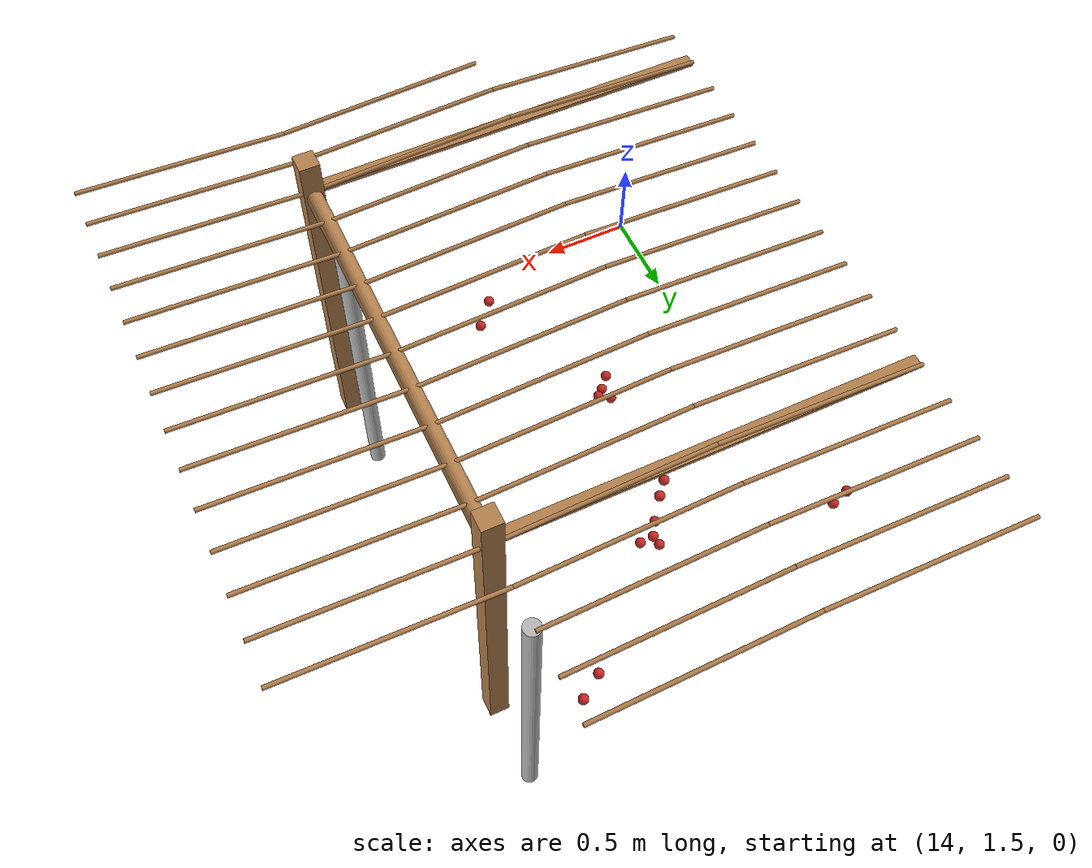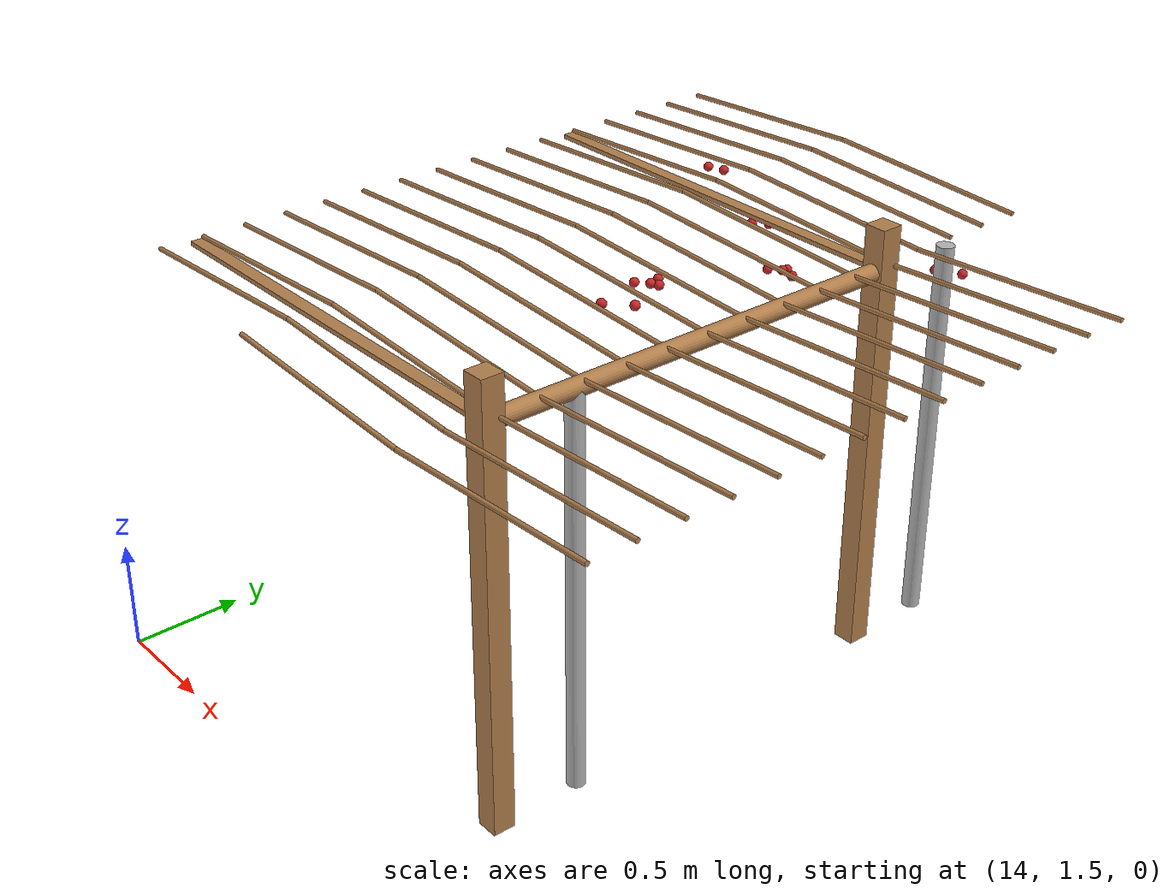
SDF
<sdf version="1.4">
 <model name="pergola">
  <include><name>post_89</name><pose>16.0 2.0 0 0 0 0</pose><uri>model://post</uri></include>
  <include><name>post_90</name><pose>16.0 4.0 0 0 0 0</pose><uri>model://post</uri></include>
  <link name="beam_78">
   <pose>15.0 2.0 1.81 0 0 0</pose>
   <collision name="collision"><geometry><box><size>2.0 0.06 0.02</size></box></geometry></collision>
   <visual name="visual">
    <geometry><box><size>2.0 0.06 0.02</size></box></geometry>
    <material><script><name>Gazebo/Wood</name></script></material>
   </visual>
   <inertial>
    <mass>5</mass>
    <inertia>
     <ixx>0.0016666666666666668</ixx>
     <ixy>0.0</ixy>
     <ixz>0.0</ixz>
     <iyy>1.6681666666666664</iyy>
     <iyz>0.0</iyz>
     <izz>1.6668333333333332</izz>
    </inertia>
   </inertial>
  </link>
  <link name="beam_79">
   <pose>15.0 4.0 1.81 0 0 0</pose>
   <collision name="collision"><geometry><box><size>2.0 0.06 0.02</size></box></geometry></collision>
   <visual name="visual">
    <geometry><box><size>2.0 0.06 0.02</size></box></geometry>
    <material><script><name>Gazebo/Wood</name></script></material>
   </visual>
   <inertial>
    <mass>5</mass>
    <inertia>
     <ixx>0.0016666666666666668</ixx>
     <ixy>0.0</ixy>
     <ixz>0.0</ixz>
     <iyy>1.6681666666666664</iyy>
     <iyz>0.0</iyz>
     <izz>1.6668333333333332</izz>
    </inertia>
   </inertial>
  </link>
  <include><name>tree_81</name><pose>16.0 2.4 0 0 0 0</pose><uri>model://tree_trunk</uri></include>
  <include><name>tree_82</name><pose>16.0 4.4 0 0 0 0</pose><uri>model://tree_trunk</uri></include>
  <link name="baseBranch_81">
   <pose>16.0 3.0 1.8 1.5707963267948966 0 0</pose>
   <collision name="collision">
    <geometry><cylinder><radius>0.04</radius><length>1.94</length></cylinder></geometry>
   </collision>
   <visual name="visual">
    <geometry><cylinder><radius>0.04</radius><length>1.94</length></cylinder></geometry>
    <material><script><name>Gazebo/WoodFloor</name></script></material>
   </visual>
   <inertial>
    <mass>10</mass>
    <inertia>
     <ixx>3.140333333333333</ixx>
     <ixy>0.0</ixy>
     <ixz>0.0</ixz>
     <iyy>3.140333333333333</iyy>
     <iyz>0.0</iyz>
     <izz>0.008</izz>
    </inertia>
   </inertial>
  </link>
  <link name="vine_1417">
   <pose>15.5 1.6300000000000001 1.85 0 -1.5208379310729538 0</pose>
   <collision name="collision">
    <geometry><cylinder><radius>0.01</radius><length>1.0012492197250393</length></cylinder></geometry>
   </collision>
   <visual name="visual">
    <geometry><cylinder><radius>0.01</radius><length>1.0012492197250393</length></cylinder></geometry>
    <material><script><name>Gazebo/WoodFloor</name></script></material>
   </visual>
   <inertial>
    <mass>5</mass>
    <inertia>
     <ixx>0.41783333333333345</ixx>
     <ixy>0.0</ixy>
     <ixz>0.0</ixz>
     <iyy>0.41783333333333345</iyy>
     <iyz>0.0</iyz>
     <izz>0.00025</izz>
    </inertia>
   </inertial>
  </link>
  <link name="vine_1418">
   <pose>14.5 1.83 1.85 0 1.5208379310729538 0</pose>
   <collision name="collision">
    <geometry><cylinder><radius>0.01</radius><length>1.0012492197250393</length></cylinder></geometry>
   </collision>
   <visual name="visual">
    <geometry><cylinder><radius>0.01</radius><length>1.0012492197250393</length></cylinder></geometry>
    <material><script><name>Gazebo/WoodFloor</name></script></material>
   </visual>
   <inertial>
    <mass>5</mass>
    <inertia>
     <ixx>0.41783333333333345</ixx>
     <ixy>0.0</ixy>
     <ixz>0.0</ixz>
     <iyy>0.41783333333333345</iyy>
     <iyz>0.0</iyz>
     <izz>0.00025</izz>
    </inertia>
   </inertial>
  </link>
  <link name="vine_1419">
   <pose>15.5 1.83 1.85 0 -1.5208379310729538 0</pose>
   <collision name="collision">
    <geometry><cylinder><radius>0.01</radius><length>1.0012492197250393</length></cylinder></geometry>
   </collision>
   <visual name="visual">
    <geometry><cylinder><radius>0.01</radius><length>1.0012492197250393</length></cylinder></geometry>
    <material><script><name>Gazebo/WoodFloor</name></script></material>
   </visual>
   <inertial>
    <mass>5</mass>
    <inertia>
     <ixx>0.41783333333333345</ixx>
     <ixy>0.0</ixy>
     <ixz>0.0</ixz>
     <iyy>0.41783333333333345</iyy>
     <iyz>0.0</iyz>
     <izz>0.00025</izz>
    </inertia>
   </inertial>
  </link>
  <link name="vine_1420">
   <pose>14.5 2.03 1.85 0 1.5208379310729538 0</pose>
   <collision name="collision">
    <geometry><cylinder><radius>0.01</radius><length>1.0012492197250393</length></cylinder></geometry>
   </collision>
   <visual name="visual">
    <geometry><cylinder><radius>0.01</radius><length>1.0012492197250393</length></cylinder></geometry>
    <material><script><name>Gazebo/WoodFloor</name></script></material>
   </visual>
   <inertial>
    <mass>5</mass>
    <inertia>
     <ixx>0.41783333333333345</ixx>
     <ixy>0.0</ixy>
     <ixz>0.0</ixz>
     <iyy>0.41783333333333345</iyy>
     <iyz>0.0</iyz>
     <izz>0.00025</izz>
    </inertia>
   </inertial>
  </link>
  <link name="vine_1421">
   <pose>15.5 2.03 1.85 0 -1.5208379310729538 0</pose>
   <collision name="collision">
    <geometry><cylinder><radius>0.01</radius><length>1.0012492197250393</length></cylinder></geometry>
   </collision>
   <visual name="visual">
    <geometry><cylinder><radius>0.01</radius><length>1.0012492197250393</length></cylinder></geometry>
    <material><script><name>Gazebo/WoodFloor</name></script></material>
   </visual>
   <inertial>
    <mass>5</mass>
    <inertia>
     <ixx>0.41783333333333345</ixx>
     <ixy>0.0</ixy>
     <ixz>0.0</ixz>
     <iyy>0.41783333333333345</iyy>
     <iyz>0.0</iyz>
     <izz>0.00025</izz>
    </inertia>
   </inertial>
  </link>
  <link name="vine_1422">
   <pose>14.5 2.23 1.85 0 1.5208379310729538 0</pose>
   <collision name="collision">
    <geometry><cylinder><radius>0.01</radius><length>1.0012492197250393</length></cylinder></geometry>
   </collision>
   <visual name="visual">
    <geometry><cylinder><radius>0.01</radius><length>1.0012492197250393</length></cylinder></geometry>
    <material><script><name>Gazebo/WoodFloor</name></script></material>
   </visual>
   <inertial>
    <mass>5</mass>
    <inertia>
     <ixx>0.41783333333333345</ixx>
     <ixy>0.0</ixy>
     <ixz>0.0</ixz>
     <iyy>0.41783333333333345</iyy>
     <iyz>0.0</iyz>
     <izz>0.00025</izz>
    </inertia>
   </inertial>
  </link>
  <link name="vine_1423">
   <pose>15.5 2.23 1.85 0 -1.5208379310729538 0</pose>
   <collision name="collision">
    <geometry><cylinder><radius>0.01</radius><length>1.0012492197250393</length></cylinder></geometry>
   </collision>
   <visual name="visual">
    <geometry><cylinder><radius>0.01</radius><length>1.0012492197250393</length></cylinder></geometry>
    <material><script><name>Gazebo/WoodFloor</name></script></material>
   </visual>
   <inertial>
    <mass>5</mass>
    <inertia>
     <ixx>0.41783333333333345</ixx>
     <ixy>0.0</ixy>
     <ixz>0.0</ixz>
     <iyy>0.41783333333333345</iyy>
     <iyz>0.0</iyz>
     <izz>0.00025</izz>
    </inertia>
   </inertial>
  </link>
  <link name="vine_1424">
   <pose>14.5 2.43 1.85 0 1.5208379310729538 0</pose>
   <collision name="collision">
    <geometry><cylinder><radius>0.01</radius><length>1.0012492197250393</length></cylinder></geometry>
   </collision>
   <visual name="visual">
    <geometry><cylinder><radius>0.01</radius><length>1.0012492197250393</length></cylinder></geometry>
    <material><script><name>Gazebo/WoodFloor</name></script></material>
   </visual>
   <inertial>
    <mass>5</mass>
    <inertia>
     <ixx>0.41783333333333345</ixx>
     <ixy>0.0</ixy>
     <ixz>0.0</ixz>
     <iyy>0.41783333333333345</iyy>
     <iyz>0.0</iyz>
     <izz>0.00025</izz>
    </inertia>
   </inertial>
  </link>
  <link name="vine_1425">
   <pose>15.5 2.43 1.85 0 -1.5208379310729538 0</pose>
   <collision name="collision">
    <geometry><cylinder><radius>0.01</radius><length>1.0012492197250393</length></cylinder></geometry>
   </collision>
   <visual name="visual">
    <geometry><cylinder><radius>0.01</radius><length>1.0012492197250393</length></cylinder></geometry>
    <material><script><name>Gazebo/WoodFloor</name></script></material>
   </visual>
   <inertial>
    <mass>5</mass>
    <inertia>
     <ixx>0.41783333333333345</ixx>
     <ixy>0.0</ixy>
     <ixz>0.0</ixz>
     <iyy>0.41783333333333345</iyy>
     <iyz>0.0</iyz>
     <izz>0.00025</izz>
    </inertia>
   </inertial>
  </link>
  <link name="vine_1426">
   <pose>14.5 2.63 1.85 0 1.5208379310729538 0</pose>
   <collision name="collision">
    <geometry><cylinder><radius>0.01</radius><length>1.0012492197250393</length></cylinder></geometry>
   </collision>
   <visual name="visual">
    <geometry><cylinder><radius>0.01</radius><length>1.0012492197250393</length></cylinder></geometry>
    <material><script><name>Gazebo/WoodFloor</name></script></material>
   </visual>
   <inertial>
    <mass>5</mass>
    <inertia>
     <ixx>0.41783333333333345</ixx>
     <ixy>0.0</ixy>
     <ixz>0.0</ixz>
     <iyy>0.41783333333333345</iyy>
     <iyz>0.0</iyz>
     <izz>0.00025</izz>
    </inertia>
   </inertial>
  </link>
  <link name="vine_1427">
   <pose>15.5 2.63 1.85 0 -1.5208379310729538 0</pose>
   <collision name="collision">
    <geometry><cylinder><radius>0.01</radius><length>1.0012492197250393</length></cylinder></geometry>
   </collision>
   <visual name="visual">
    <geometry><cylinder><radius>0.01</radius><length>1.0012492197250393</length></cylinder></geometry>
    <material><script><name>Gazebo/WoodFloor</name></script></material>
   </visual>
   <inertial>
    <mass>5</mass>
    <inertia>
     <ixx>0.41783333333333345</ixx>
     <ixy>0.0</ixy>
     <ixz>0.0</ixz>
     <iyy>0.41783333333333345</iyy>
     <iyz>0.0</iyz>
     <izz>0.00025</izz>
    </inertia>
   </inertial>
  </link>
  <link name="vine_1428">
   <pose>14.5 2.83 1.85 0 1.5208379310729538 0</pose>
   <collision name="collision">
    <geometry><cylinder><radius>0.01</radius><length>1.0012492197250393</length></cylinder></geometry>
   </collision>
   <visual name="visual">
    <geometry><cylinder><radius>0.01</radius><length>1.0012492197250393</length></cylinder></geometry>
    <material><script><name>Gazebo/WoodFloor</name></script></material>
   </visual>
   <inertial>
    <mass>5</mass>
    <inertia>
     <ixx>0.41783333333333345</ixx>
     <ixy>0.0</ixy>
     <ixz>0.0</ixz>
     <iyy>0.41783333333333345</iyy>
     <iyz>0.0</iyz>
     <izz>0.00025</izz>
    </inertia>
   </inertial>
  </link>
  <link name="vine_1429">
   <pose>15.5 2.83 1.85 0 -1.5208379310729538 0</pose>
   <collision name="collision">
    <geometry><cylinder><radius>0.01</radius><length>1.0012492197250393</length></cylinder></geometry>
   </collision>
   <visual name="visual">
    <geometry><cylinder><radius>0.01</radius><length>1.0012492197250393</length></cylinder></geometry>
    <material><script><name>Gazebo/WoodFloor</name></script></material>
   </visual>
   <inertial>
    <mass>5</mass>
    <inertia>
     <ixx>0.41783333333333345</ixx>
     <ixy>0.0</ixy>
     <ixz>0.0</ixz>
     <iyy>0.41783333333333345</iyy>
     <iyz>0.0</iyz>
     <izz>0.00025</izz>
    </inertia>
   </inertial>
  </link>
  <link name="vine_1430">
   <pose>14.5 3.03 1.85 0 1.5208379310729538 0</pose>
   <collision name="collision">
    <geometry><cylinder><radius>0.01</radius><length>1.0012492197250393</length></cylinder></geometry>
   </collision>
   <visual name="visual">
    <geometry><cylinder><radius>0.01</radius><length>1.0012492197250393</length></cylinder></geometry>
    <material><script><name>Gazebo/WoodFloor</name></script></material>
   </visual>
   <inertial>
    <mass>5</mass>
    <inertia>
     <ixx>0.41783333333333345</ixx>
     <ixy>0.0</ixy>
     <ixz>0.0</ixz>
     <iyy>0.41783333333333345</iyy>
     <iyz>0.0</iyz>
     <izz>0.00025</izz>
    </inertia>
   </inertial>
  </link>
  <link name="vine_1431">
   <pose>15.5 3.03 1.85 0 -1.5208379310729538 0</pose>
   <collision name="collision">
    <geometry><cylinder><radius>0.01</radius><length>1.0012492197250393</length></cylinder></geometry>
   </collision>
   <visual name="visual">
    <geometry><cylinder><radius>0.01</radius><length>1.0012492197250393</length></cylinder></geometry>
    <material><script><name>Gazebo/WoodFloor</name></script></material>
   </visual>
   <inertial>
    <mass>5</mass>
    <inertia>
     <ixx>0.41783333333333345</ixx>
     <ixy>0.0</ixy>
     <ixz>0.0</ixz>
     <iyy>0.41783333333333345</iyy>
     <iyz>0.0</iyz>
     <izz>0.00025</izz>
    </inertia>
   </inertial>
  </link>
  <link name="vine_1432">
   <pose>14.5 3.23 1.85 0 1.5208379310729538 0</pose>
   <collision name="collision">
    <geometry><cylinder><radius>0.01</radius><length>1.0012492197250393</length></cylinder></geometry>
   </collision>
   <visual name="visual">
    <geometry><cylinder><radius>0.01</radius><length>1.0012492197250393</length></cylinder></geometry>
    <material><script><name>Gazebo/WoodFloor</name></script></material>
   </visual>
   <inertial>
    <mass>5</mass>
    <inertia>
     <ixx>0.41783333333333345</ixx>
     <ixy>0.0</ixy>
     <ixz>0.0</ixz>
     <iyy>0.41783333333333345</iyy>
     <iyz>0.0</iyz>
     <izz>0.00025</izz>
    </inertia>
   </inertial>
  </link>
  <link name="vine_1433">
   <pose>15.5 3.23 1.85 0 -1.5208379310729538 0</pose>
   <collision name="collision">
    <geometry><cylinder><radius>0.01</radius><length>1.0012492197250393</length></cylinder></geometry>
   </collision>
   <visual name="visual">
    <geometry><cylinder><radius>0.01</radius><length>1.0012492197250393</length></cylinder></geometry>
    <material><script><name>Gazebo/WoodFloor</name></script></material>
   </visual>
   <inertial>
    <mass>5</mass>
    <inertia>
     <ixx>0.41783333333333345</ixx>
     <ixy>0.0</ixy>
     <ixz>0.0</ixz>
     <iyy>0.41783333333333345</iyy>
     <iyz>0.0</iyz>
     <izz>0.00025</izz>
    </inertia>
   </inertial>
  </link>
  <link name="vine_1434">
   <pose>14.5 3.43 1.85 0 1.5208379310729538 0</pose>
   <collision name="collision">
    <geometry><cylinder><radius>0.01</radius><length>1.0012492197250393</length></cylinder></geometry>
   </collision>
   <visual name="visual">
    <geometry><cylinder><radius>0.01</radius><length>1.0012492197250393</length></cylinder></geometry>
    <material><script><name>Gazebo/WoodFloor</name></script></material>
   </visual>
   <inertial>
    <mass>5</mass>
    <inertia>
     <ixx>0.41783333333333345</ixx>
     <ixy>0.0</ixy>
     <ixz>0.0</ixz>
     <iyy>0.41783333333333345</iyy>
     <iyz>0.0</iyz>
     <izz>0.00025</izz>
    </inertia>
   </inertial>
  </link>
  <link name="vine_1435">
   <pose>15.5 3.43 1.85 0 -1.5208379310729538 0</pose>
   <collision name="collision">
    <geometry><cylinder><radius>0.01</radius><length>1.0012492197250393</length></cylinder></geometry>
   </collision>
   <visual name="visual">
    <geometry><cylinder><radius>0.01</radius><length>1.0012492197250393</length></cylinder></geometry>
    <material><script><name>Gazebo/WoodFloor</name></script></material>
   </visual>
   <inertial>
    <mass>5</mass>
    <inertia>
     <ixx>0.41783333333333345</ixx>
     <ixy>0.0</ixy>
     <ixz>0.0</ixz>
     <iyy>0.41783333333333345</iyy>
     <iyz>0.0</iyz>
     <izz>0.00025</izz>
    </inertia>
   </inertial>
  </link>
  <link name="vine_1436">
   <pose>14.5 3.63 1.85 0 1.5208379310729538 0</pose>
   <collision name="collision">
    <geometry><cylinder><radius>0.01</radius><length>1.0012492197250393</length></cylinder></geometry>
   </collision>
   <visual name="visual">
    <geometry><cylinder><radius>0.01</radius><length>1.0012492197250393</length></cylinder></geometry>
    <material><script><name>Gazebo/WoodFloor</name></script></material>
   </visual>
   <inertial>
    <mass>5</mass>
    <inertia>
     <ixx>0.41783333333333345</ixx>
     <ixy>0.0</ixy>
     <ixz>0.0</ixz>
     <iyy>0.41783333333333345</iyy>
     <iyz>0.0</iyz>
     <izz>0.00025</izz>
    </inertia>
   </inertial>
  </link>
  <link name="vine_1437">
   <pose>15.5 3.63 1.85 0 -1.5208379310729538 0</pose>
   <collision name="collision">
    <geometry><cylinder><radius>0.01</radius><length>1.0012492197250393</length></cylinder></geometry>
   </collision>
   <visual name="visual">
    <geometry><cylinder><radius>0.01</radius><length>1.0012492197250393</length></cylinder></geometry>
    <material><script><name>Gazebo/WoodFloor</name></script></material>
   </visual>
   <inertial>
    <mass>5</mass>
    <inertia>
     <ixx>0.41783333333333345</ixx>
     <ixy>0.0</ixy>
     <ixz>0.0</ixz>
     <iyy>0.41783333333333345</iyy>
     <iyz>0.0</iyz>
     <izz>0.00025</izz>
    </inertia>
   </inertial>
  </link>
  <link name="vine_1438">
   <pose>14.5 3.83 1.85 0 1.5208379310729538 0</pose>
   <collision name="collision">
    <geometry><cylinder><radius>0.01</radius><length>1.0012492197250393</length></cylinder></geometry>
   </collision>
   <visual name="visual">
    <geometry><cylinder><radius>0.01</radius><length>1.0012492197250393</length></cylinder></geometry>
    <material><script><name>Gazebo/WoodFloor</name></script></material>
   </visual>
   <inertial>
    <mass>5</mass>
    <inertia>
     <ixx>0.41783333333333345</ixx>
     <ixy>0.0</ixy>
     <ixz>0.0</ixz>
     <iyy>0.41783333333333345</iyy>
     <iyz>0.0</iyz>
     <izz>0.00025</izz>
    </inertia>
   </inertial>
  </link>
  <link name="vine_1439">
   <pose>15.5 3.83 1.85 0 -1.5208379310729538 0</pose>
   <collision name="collision">
    <geometry><cylinder><radius>0.01</radius><length>1.0012492197250393</length></cylinder></geometry>
   </collision>
   <visual name="visual">
    <geometry><cylinder><radius>0.01</radius><length>1.0012492197250393</length></cylinder></geometry>
    <material><script><name>Gazebo/WoodFloor</name></script></material>
   </visual>
   <inertial>
    <mass>5</mass>
    <inertia>
     <ixx>0.41783333333333345</ixx>
     <ixy>0.0</ixy>
     <ixz>0.0</ixz>
     <iyy>0.41783333333333345</iyy>
     <iyz>0.0</iyz>
     <izz>0.00025</izz>
    </inertia>
   </inertial>
  </link>
  <link name="vine_1440">
   <pose>14.5 4.03 1.85 0 1.5208379310729538 0</pose>
   <collision name="collision">
    <geometry><cylinder><radius>0.01</radius><length>1.0012492197250393</length></cylinder></geometry>
   </collision>
   <visual name="visual">
    <geometry><cylinder><radius>0.01</radius><length>1.0012492197250393</length></cylinder></geometry>
    <material><script><name>Gazebo/WoodFloor</name></script></material>
   </visual>
   <inertial>
    <mass>5</mass>
    <inertia>
     <ixx>0.41783333333333345</ixx>
     <ixy>0.0</ixy>
     <ixz>0.0</ixz>
     <iyy>0.41783333333333345</iyy>
     <iyz>0.0</iyz>
     <izz>0.00025</izz>
    </inertia>
   </inertial>
  </link>
  <link name="vine_1441">
   <pose>15.5 4.03 1.85 0 -1.5208379310729538 0</pose>
   <collision name="collision">
    <geometry><cylinder><radius>0.01</radius><length>1.0012492197250393</length></cylinder></geometry>
   </collision>
   <visual name="visual">
    <geometry><cylinder><radius>0.01</radius><length>1.0012492197250393</length></cylinder></geometry>
    <material><script><name>Gazebo/WoodFloor</name></script></material>
   </visual>
   <inertial>
    <mass>5</mass>
    <inertia>
     <ixx>0.41783333333333345</ixx>
     <ixy>0.0</ixy>
     <ixz>0.0</ixz>
     <iyy>0.41783333333333345</iyy>
     <iyz>0.0</iyz>
     <izz>0.00025</izz>
    </inertia>
   </inertial>
  </link>
  <link name="vine_1442">
   <pose>14.5 4.23 1.85 0 1.5208379310729538 0</pose>
   <collision name="collision">
    <geometry><cylinder><radius>0.01</radius><length>1.0012492197250393</length></cylinder></geometry>
   </collision>
   <visual name="visual">
    <geometry><cylinder><radius>0.01</radius><length>1.0012492197250393</length></cylinder></geometry>
    <material><script><name>Gazebo/WoodFloor</name></script></material>
   </visual>
   <inertial>
    <mass>5</mass>
    <inertia>
     <ixx>0.41783333333333345</ixx>
     <ixy>0.0</ixy>
     <ixz>0.0</ixz>
     <iyy>0.41783333333333345</iyy>
     <iyz>0.0</iyz>
     <izz>0.00025</izz>
    </inertia>
   </inertial>
  </link>
  <link name="vine_1443">
   <pose>15.5 4.23 1.85 0 -1.5208379310729538 0</pose>
   <collision name="collision">
    <geometry><cylinder><radius>0.01</radius><length>1.0012492197250393</length></cylinder></geometry>
   </collision>
   <visual name="visual">
    <geometry><cylinder><radius>0.01</radius><length>1.0012492197250393</length></cylinder></geometry>
    <material><script><name>Gazebo/WoodFloor</name></script></material>
   </visual>
   <inertial>
    <mass>5</mass>
    <inertia>
     <ixx>0.41783333333333345</ixx>
     <ixy>0.0</ixy>
     <ixz>0.0</ixz>
     <iyy>0.41783333333333345</iyy>
     <iyz>0.0</iyz>
     <izz>0.00025</izz>
    </inertia>
   </inertial>
  </link>
  <link name="vine_1444">
   <pose>14.5 4.430000000000001 1.85 0 1.5208379310729538 0</pose>
   <collision name="collision">
    <geometry><cylinder><radius>0.01</radius><length>1.0012492197250393</length></cylinder></geometry>
   </collision>
   <visual name="visual">
    <geometry><cylinder><radius>0.01</radius><length>1.0012492197250393</length></cylinder></geometry>
    <material><script><name>Gazebo/WoodFloor</name></script></material>
   </visual>
   <inertial>
    <mass>5</mass>
    <inertia>
     <ixx>0.41783333333333345</ixx>
     <ixy>0.0</ixy>
     <ixz>0.0</ixz>
     <iyy>0.41783333333333345</iyy>
     <iyz>0.0</iyz>
     <izz>0.00025</izz>
    </inertia>
   </inertial>
  </link>
  <link name="vine_1445">
   <pose>15.5 4.430000000000001 1.85 0 -1.5208379310729538 0</pose>
   <collision name="collision">
    <geometry><cylinder><radius>0.01</radius><length>1.0012492197250393</length></cylinder></geometry>
   </collision>
   <visual name="visual">
    <geometry><cylinder><radius>0.01</radius><length>1.0012492197250393</length></cylinder></geometry>
    <material><script><name>Gazebo/WoodFloor</name></script></material>
   </visual>
   <inertial>
    <mass>5</mass>
    <inertia>
     <ixx>0.41783333333333345</ixx>
     <ixy>0.0</ixy>
     <ixz>0.0</ixz>
     <iyy>0.41783333333333345</iyy>
     <iyz>0.0</iyz>
     <izz>0.00025</izz>
    </inertia>
   </inertial>
  </link>
  <link name="vine_1446">
   <pose>14.5 4.630000000000001 1.85 0 1.5208379310729538 0</pose>
   <collision name="collision">
    <geometry><cylinder><radius>0.01</radius><length>1.0012492197250393</length></cylinder></geometry>
   </collision>
   <visual name="visual">
    <geometry><cylinder><radius>0.01</radius><length>1.0012492197250393</length></cylinder></geometry>
    <material><script><name>Gazebo/WoodFloor</name></script></material>
   </visual>
   <inertial>
    <mass>5</mass>
    <inertia>
     <ixx>0.41783333333333345</ixx>
     <ixy>0.0</ixy>
     <ixz>0.0</ixz>
     <iyy>0.41783333333333345</iyy>
     <iyz>0.0</iyz>
     <izz>0.00025</izz>
    </inertia>
   </inertial>
  </link>
  <link name="vine_1447">
   <pose>15.5 4.630000000000001 1.85 0 -1.5208379310729538 0</pose>
   <collision name="collision">
    <geometry><cylinder><radius>0.01</radius><length>1.0012492197250393</length></cylinder></geometry>
   </collision>
   <visual name="visual">
    <geometry><cylinder><radius>0.01</radius><length>1.0012492197250393</length></cylinder></geometry>
    <material><script><name>Gazebo/WoodFloor</name></script></material>
   </visual>
   <inertial>
    <mass>5</mass>
    <inertia>
     <ixx>0.41783333333333345</ixx>
     <ixy>0.0</ixy>
     <ixz>0.0</ixz>
     <iyy>0.41783333333333345</iyy>
     <iyz>0.0</iyz>
     <izz>0.00025</izz>
    </inertia>
   </inertial>
  </link>
  <link name="vine_1448">
   <pose>14.5 4.830000000000001 1.85 0 1.5208379310729538 0</pose>
   <collision name="collision">
    <geometry><cylinder><radius>0.01</radius><length>1.0012492197250393</length></cylinder></geometry>
   </collision>
   <visual name="visual">
    <geometry><cylinder><radius>0.01</radius><length>1.0012492197250393</length></cylinder></geometry>
    <material><script><name>Gazebo/WoodFloor</name></script></material>
   </visual>
   <inertial>
    <mass>5</mass>
    <inertia>
     <ixx>0.41783333333333345</ixx>
     <ixy>0.0</ixy>
     <ixz>0.0</ixz>
     <iyy>0.41783333333333345</iyy>
     <iyz>0.0</iyz>
     <izz>0.00025</izz>
    </inertia>
   </inertial>
  </link>
  <link name="vine_1449">
   <pose>15.5 4.830000000000001 1.85 0 -1.5208379310729538 0</pose>
   <collision name="collision">
    <geometry><cylinder><radius>0.01</radius><length>1.0012492197250393</length></cylinder></geometry>
   </collision>
   <visual name="visual">
    <geometry><cylinder><radius>0.01</radius><length>1.0012492197250393</length></cylinder></geometry>
    <material><script><name>Gazebo/WoodFloor</name></script></material>
   </visual>
   <inertial>
    <mass>5</mass>
    <inertia>
     <ixx>0.41783333333333345</ixx>
     <ixy>0.0</ixy>
     <ixz>0.0</ixz>
     <iyy>0.41783333333333345</iyy>
     <iyz>0.0</iyz>
     <izz>0.00025</izz>
    </inertia>
   </inertial>
  </link>
  <link name="vine_1616">
   <pose>16.5 1.6300000000000001 1.85 0 1.5208379310729538 0</pose>
   <collision name="collision">
    <geometry><cylinder><radius>0.01</radius><length>1.0012492197250393</length></cylinder></geometry>
   </collision>
   <visual name="visual">
    <geometry><cylinder><radius>0.01</radius><length>1.0012492197250393</length></cylinder></geometry>
    <material><script><name>Gazebo/WoodFloor</name></script></material>
   </visual>
   <inertial>
    <mass>5</mass>
    <inertia>
     <ixx>0.41783333333333345</ixx>
     <ixy>0.0</ixy>
     <ixz>0.0</ixz>
     <iyy>0.41783333333333345</iyy>
     <iyz>0.0</iyz>
     <izz>0.00025</izz>
    </inertia>
   </inertial>
  </link>
  <link name="vine_1618">
   <pose>16.5 1.83 1.85 0 1.5208379310729538 0</pose>
   <collision name="collision">
    <geometry><cylinder><radius>0.01</radius><length>1.0012492197250393</length></cylinder></geometry>
   </collision>
   <visual name="visual">
    <geometry><cylinder><radius>0.01</radius><length>1.0012492197250393</length></cylinder></geometry>
    <material><script><name>Gazebo/WoodFloor</name></script></material>
   </visual>
   <inertial>
    <mass>5</mass>
    <inertia>
     <ixx>0.41783333333333345</ixx>
     <ixy>0.0</ixy>
     <ixz>0.0</ixz>
     <iyy>0.41783333333333345</iyy>
     <iyz>0.0</iyz>
     <izz>0.00025</izz>
    </inertia>
   </inertial>
  </link>
  <link name="vine_1620">
   <pose>16.5 2.03 1.85 0 1.5208379310729538 0</pose>
   <collision name="collision">
    <geometry><cylinder><radius>0.01</radius><length>1.0012492197250393</length></cylinder></geometry>
   </collision>
   <visual name="visual">
    <geometry><cylinder><radius>0.01</radius><length>1.0012492197250393</length></cylinder></geometry>
    <material><script><name>Gazebo/WoodFloor</name></script></material>
   </visual>
   <inertial>
    <mass>5</mass>
    <inertia>
     <ixx>0.41783333333333345</ixx>
     <ixy>0.0</ixy>
     <ixz>0.0</ixz>
     <iyy>0.41783333333333345</iyy>
     <iyz>0.0</iyz>
     <izz>0.00025</izz>
    </inertia>
   </inertial>
  </link>
  <link name="vine_1622">
   <pose>16.5 2.23 1.85 0 1.5208379310729538 0</pose>
   <collision name="collision">
    <geometry><cylinder><radius>0.01</radius><length>1.0012492197250393</length></cylinder></geometry>
   </collision>
   <visual name="visual">
    <geometry><cylinder><radius>0.01</radius><length>1.0012492197250393</length></cylinder></geometry>
    <material><script><name>Gazebo/WoodFloor</name></script></material>
   </visual>
   <inertial>
    <mass>5</mass>
    <inertia>
     <ixx>0.41783333333333345</ixx>
     <ixy>0.0</ixy>
     <ixz>0.0</ixz>
     <iyy>0.41783333333333345</iyy>
     <iyz>0.0</iyz>
     <izz>0.00025</izz>
    </inertia>
   </inertial>
  </link>
  <link name="vine_1624">
   <pose>16.5 2.43 1.85 0 1.5208379310729538 0</pose>
   <collision name="collision">
    <geometry><cylinder><radius>0.01</radius><length>1.0012492197250393</length></cylinder></geometry>
   </collision>
   <visual name="visual">
    <geometry><cylinder><radius>0.01</radius><length>1.0012492197250393</length></cylinder></geometry>
    <material><script><name>Gazebo/WoodFloor</name></script></material>
   </visual>
   <inertial>
    <mass>5</mass>
    <inertia>
     <ixx>0.41783333333333345</ixx>
     <ixy>0.0</ixy>
     <ixz>0.0</ixz>
     <iyy>0.41783333333333345</iyy>
     <iyz>0.0</iyz>
     <izz>0.00025</izz>
    </inertia>
   </inertial>
  </link>
  <link name="vine_1626">
   <pose>16.5 2.63 1.85 0 1.5208379310729538 0</pose>
   <collision name="collision">
    <geometry><cylinder><radius>0.01</radius><length>1.0012492197250393</length></cylinder></geometry>
   </collision>
   <visual name="visual">
    <geometry><cylinder><radius>0.01</radius><length>1.0012492197250393</length></cylinder></geometry>
    <material><script><name>Gazebo/WoodFloor</name></script></material>
   </visual>
   <inertial>
    <mass>5</mass>
    <inertia>
     <ixx>0.41783333333333345</ixx>
     <ixy>0.0</ixy>
     <ixz>0.0</ixz>
     <iyy>0.41783333333333345</iyy>
     <iyz>0.0</iyz>
     <izz>0.00025</izz>
    </inertia>
   </inertial>
  </link>
  <link name="vine_1628">
   <pose>16.5 2.83 1.85 0 1.5208379310729538 0</pose>
   <collision name="collision">
    <geometry><cylinder><radius>0.01</radius><length>1.0012492197250393</length></cylinder></geometry>
   </collision>
   <visual name="visual">
    <geometry><cylinder><radius>0.01</radius><length>1.0012492197250393</length></cylinder></geometry>
    <material><script><name>Gazebo/WoodFloor</name></script></material>
   </visual>
   <inertial>
    <mass>5</mass>
    <inertia>
     <ixx>0.41783333333333345</ixx>
     <ixy>0.0</ixy>
     <ixz>0.0</ixz>
     <iyy>0.41783333333333345</iyy>
     <iyz>0.0</iyz>
     <izz>0.00025</izz>
    </inertia>
   </inertial>
  </link>
  <link name="vine_1630">
   <pose>16.5 3.03 1.85 0 1.5208379310729538 0</pose>
   <collision name="collision">
    <geometry><cylinder><radius>0.01</radius><length>1.0012492197250393</length></cylinder></geometry>
   </collision>
   <visual name="visual">
    <geometry><cylinder><radius>0.01</radius><length>1.0012492197250393</length></cylinder></geometry>
    <material><script><name>Gazebo/WoodFloor</name></script></material>
   </visual>
   <inertial>
    <mass>5</mass>
    <inertia>
     <ixx>0.41783333333333345</ixx>
     <ixy>0.0</ixy>
     <ixz>0.0</ixz>
     <iyy>0.41783333333333345</iyy>
     <iyz>0.0</iyz>
     <izz>0.00025</izz>
    </inertia>
   </inertial>
  </link>
  <link name="vine_1632">
   <pose>16.5 3.23 1.85 0 1.5208379310729538 0</pose>
   <collision name="collision">
    <geometry><cylinder><radius>0.01</radius><length>1.0012492197250393</length></cylinder></geometry>
   </collision>
   <visual name="visual">
    <geometry><cylinder><radius>0.01</radius><length>1.0012492197250393</length></cylinder></geometry>
    <material><script><name>Gazebo/WoodFloor</name></script></material>
   </visual>
   <inertial>
    <mass>5</mass>
    <inertia>
     <ixx>0.41783333333333345</ixx>
     <ixy>0.0</ixy>
     <ixz>0.0</ixz>
     <iyy>0.41783333333333345</iyy>
     <iyz>0.0</iyz>
     <izz>0.00025</izz>
    </inertia>
   </inertial>
  </link>
  <link name="vine_1634">
   <pose>16.5 3.43 1.85 0 1.5208379310729538 0</pose>
   <collision name="collision">
    <geometry><cylinder><radius>0.01</radius><length>1.0012492197250393</length></cylinder></geometry>
   </collision>
   <visual name="visual">
    <geometry><cylinder><radius>0.01</radius><length>1.0012492197250393</length></cylinder></geometry>
    <material><script><name>Gazebo/WoodFloor</name></script></material>
   </visual>
   <inertial>
    <mass>5</mass>
    <inertia>
     <ixx>0.41783333333333345</ixx>
     <ixy>0.0</ixy>
     <ixz>0.0</ixz>
     <iyy>0.41783333333333345</iyy>
     <iyz>0.0</iyz>
     <izz>0.00025</izz>
    </inertia>
   </inertial>
  </link>
  <link name="vine_1636">
   <pose>16.5 3.63 1.85 0 1.5208379310729538 0</pose>
   <collision name="collision">
    <geometry><cylinder><radius>0.01</radius><length>1.0012492197250393</length></cylinder></geometry>
   </collision>
   <visual name="visual">
    <geometry><cylinder><radius>0.01</radius><length>1.0012492197250393</length></cylinder></geometry>
    <material><script><name>Gazebo/WoodFloor</name></script></material>
   </visual>
   <inertial>
    <mass>5</mass>
    <inertia>
     <ixx>0.41783333333333345</ixx>
     <ixy>0.0</ixy>
     <ixz>0.0</ixz>
     <iyy>0.41783333333333345</iyy>
     <iyz>0.0</iyz>
     <izz>0.00025</izz>
    </inertia>
   </inertial>
  </link>
  <link name="vine_1638">
   <pose>16.5 3.83 1.85 0 1.5208379310729538 0</pose>
   <collision name="collision">
    <geometry><cylinder><radius>0.01</radius><length>1.0012492197250393</length></cylinder></geometry>
   </collision>
   <visual name="visual">
    <geometry><cylinder><radius>0.01</radius><length>1.0012492197250393</length></cylinder></geometry>
    <material><script><name>Gazebo/WoodFloor</name></script></material>
   </visual>
   <inertial>
    <mass>5</mass>
    <inertia>
     <ixx>0.41783333333333345</ixx>
     <ixy>0.0</ixy>
     <ixz>0.0</ixz>
     <iyy>0.41783333333333345</iyy>
     <iyz>0.0</iyz>
     <izz>0.00025</izz>
    </inertia>
   </inertial>
  </link>
  <link name="vine_1640">
   <pose>16.5 4.03 1.85 0 1.5208379310729538 0</pose>
   <collision name="collision">
    <geometry><cylinder><radius>0.01</radius><length>1.0012492197250393</length></cylinder></geometry>
   </collision>
   <visual name="visual">
    <geometry><cylinder><radius>0.01</radius><length>1.0012492197250393</length></cylinder></geometry>
    <material><script><name>Gazebo/WoodFloor</name></script></material>
   </visual>
   <inertial>
    <mass>5</mass>
    <inertia>
     <ixx>0.41783333333333345</ixx>
     <ixy>0.0</ixy>
     <ixz>0.0</ixz>
     <iyy>0.41783333333333345</iyy>
     <iyz>0.0</iyz>
     <izz>0.00025</izz>
    </inertia>
   </inertial>
  </link>
  <link name="vine_1642">
   <pose>16.5 4.23 1.85 0 1.5208379310729538 0</pose>
   <collision name="collision">
    <geometry><cylinder><radius>0.01</radius><length>1.0012492197250393</length></cylinder></geometry>
   </collision>
   <visual name="visual">
    <geometry><cylinder><radius>0.01</radius><length>1.0012492197250393</length></cylinder></geometry>
    <material><script><name>Gazebo/WoodFloor</name></script></material>
   </visual>
   <inertial>
    <mass>5</mass>
    <inertia>
     <ixx>0.41783333333333345</ixx>
     <ixy>0.0</ixy>
     <ixz>0.0</ixz>
     <iyy>0.41783333333333345</iyy>
     <iyz>0.0</iyz>
     <izz>0.00025</izz>
    </inertia>
   </inertial>
  </link>
  <link name="fruit_14">
   <pose>15.802727478014127 4.591669859960392 1.5623819598880457 0 0 0</pose>
   <collision name="fruit_collision_14"><geometry><sphere><radius>0.022</radius></sphere></geometry></collision>
   <visual name="visual">
    <geometry><sphere><radius>0.022</radius></sphere></geometry>
    <material><script><name>Gazebo/Red</name></script></material>
   </visual>
   <inertial>
    <mass>0.05</mass>
    <inertia>
     <ixx>9.679999999999999e-06</ixx>
     <ixy>0.0</ixy>
     <ixz>0.0</ixz>
     <iyy>9.679999999999999e-06</iyy>
     <iyz>0.0</iyz>
     <izz>9.679999999999999e-06</izz>
    </inertia>
   </inertial>
   <sensor name="fruit_contact_14" type="contact">
    <contact><collision>fruit_collision_14</collision></contact>
   </sensor>
  </link>
  <link name="fruit_114">
   <pose>15.230261658579039 4.026883631152812 1.749613695267297 0 0 0</pose>
   <collision name="fruit_collision_114"><geometry><sphere><radius>0.022</radius></sphere></geometry></collision>
   <visual name="visual">
    <geometry><sphere><radius>0.022</radius></sphere></geometry>
    <material><script><name>Gazebo/Red</name></script></material>
   </visual>
   <inertial>
    <mass>0.05</mass>
    <inertia>
     <ixx>9.679999999999999e-06</ixx>
     <ixy>0.0</ixy>
     <ixz>0.0</ixz>
     <iyy>9.679999999999999e-06</iyy>
     <iyz>0.0</iyz>
     <izz>9.679999999999999e-06</izz>
    </inertia>
   </inertial>
   <sensor name="fruit_contact_114" type="contact">
    <contact><collision>fruit_collision_114</collision></contact>
   </sensor>
  </link>
  <link name="fruit_119">
   <pose>14.575069237154517 4.376122943770217 1.7285943108345658 0 0 0</pose>
   <collision name="fruit_collision_119"><geometry><sphere><radius>0.022</radius></sphere></geometry></collision>
   <visual name="visual">
    <geometry><sphere><radius>0.022</radius></sphere></geometry>
    <material><script><name>Gazebo/Red</name></script></material>
   </visual>
   <inertial>
    <mass>0.05</mass>
    <inertia>
     <ixx>9.679999999999999e-06</ixx>
     <ixy>0.0</ixy>
     <ixz>0.0</ixz>
     <iyy>9.679999999999999e-06</iyy>
     <iyz>0.0</iyz>
     <izz>9.679999999999999e-06</izz>
    </inertia>
   </inertial>
   <sensor name="fruit_contact_119" type="contact">
    <contact><collision>fruit_collision_119</collision></contact>
   </sensor>
  </link>
  <link name="fruit_336">
   <pose>15.170145282943636 3.402268643739695 1.626757012464649 0 0 0</pose>
   <collision name="fruit_collision_336"><geometry><sphere><radius>0.022</radius></sphere></geometry></collision>
   <visual name="visual">
    <geometry><sphere><radius>0.022</radius></sphere></geometry>
    <material><script><name>Gazebo/Red</name></script></material>
   </visual>
   <inertial>
    <mass>0.05</mass>
    <inertia>
     <ixx>9.679999999999999e-06</ixx>
     <ixy>0.0</ixy>
     <ixz>0.0</ixz>
     <iyy>9.679999999999999e-06</iyy>
     <iyz>0.0</iyz>
     <izz>9.679999999999999e-06</izz>
    </inertia>
   </inertial>
   <sensor name="fruit_contact_336" type="contact">
    <contact><collision>fruit_collision_336</collision></contact>
   </sensor>
  </link>
  <link name="fruit_346">
   <pose>15.515654879161431 2.930799595363012 1.7952091572516282 0 0 0</pose>
   <collision name="fruit_collision_346"><geometry><sphere><radius>0.022</radius></sphere></geometry></collision>
   <visual name="visual">
    <geometry><sphere><radius>0.022</radius></sphere></geometry>
    <material><script><name>Gazebo/Red</name></script></material>
   </visual>
   <inertial>
    <mass>0.05</mass>
    <inertia>
     <ixx>9.679999999999999e-06</ixx>
     <ixy>0.0</ixy>
     <ixz>0.0</ixz>
     <iyy>9.679999999999999e-06</iyy>
     <iyz>0.0</iyz>
     <izz>9.679999999999999e-06</izz>
    </inertia>
   </inertial>
   <sensor name="fruit_contact_346" type="contact">
    <contact><collision>fruit_collision_346</collision></contact>
   </sensor>
  </link>
  <link name="fruit_349">
   <pose>15.283283414372601 4.0840816584040525 1.531462465960419 0 0 0</pose>
   <collision name="fruit_collision_349"><geometry><sphere><radius>0.022</radius></sphere></geometry></collision>
   <visual name="visual">
    <geometry><sphere><radius>0.022</radius></sphere></geometry>
    <material><script><name>Gazebo/Red</name></script></material>
   </visual>
   <inertial>
    <mass>0.05</mass>
    <inertia>
     <ixx>9.679999999999999e-06</ixx>
     <ixy>0.0</ixy>
     <ixz>0.0</ixz>
     <iyy>9.679999999999999e-06</iyy>
     <iyz>0.0</iyz>
     <izz>9.679999999999999e-06</izz>
    </inertia>
   </inertial>
   <sensor name="fruit_contact_349" type="contact">
    <contact><collision>fruit_collision_349</collision></contact>
   </sensor>
  </link>
  <link name="fruit_413">
   <pose>15.31936087212606 4.139499708951168 1.5230942277365256 0 0 0</pose>
   <collision name="fruit_collision_413"><geometry><sphere><radius>0.022</radius></sphere></geometry></collision>
   <visual name="visual">
    <geometry><sphere><radius>0.022</radius></sphere></geometry>
    <material><script><name>Gazebo/Red</name></script></material>
   </visual>
   <inertial>
    <mass>0.05</mass>
    <inertia>
     <ixx>9.679999999999999e-06</ixx>
     <ixy>0.0</ixy>
     <ixz>0.0</ixz>
     <iyy>9.679999999999999e-06</iyy>
     <iyz>0.0</iyz>
     <izz>9.679999999999999e-06</izz>
    </inertia>
   </inertial>
   <sensor name="fruit_contact_413" type="contact">
    <contact><collision>fruit_collision_413</collision></contact>
   </sensor>
  </link>
  <link name="fruit_546">
   <pose>15.24439152835758 3.476268276161951 1.6180799928199028 0 0 0</pose>
   <collision name="fruit_collision_546"><geometry><sphere><radius>0.022</radius></sphere></geometry></collision>
   <visual name="visual">
    <geometry><sphere><radius>0.022</radius></sphere></geometry>
    <material><script><name>Gazebo/Red</name></script></material>
   </visual>
   <inertial>
    <mass>0.05</mass>
    <inertia>
     <ixx>9.679999999999999e-06</ixx>
     <ixy>0.0</ixy>
     <ixz>0.0</ixz>
     <iyy>9.679999999999999e-06</iyy>
     <iyz>0.0</iyz>
     <izz>9.679999999999999e-06</izz>
    </inertia>
   </inertial>
   <sensor name="fruit_contact_546" type="contact">
    <contact><collision>fruit_collision_546</collision></contact>
   </sensor>
  </link>
  <link name="fruit_573">
   <pose>15.309929792043315 4.1785811480778206 1.5113053697709673 0 0 0</pose>
   <collision name="fruit_collision_573"><geometry><sphere><radius>0.022</radius></sphere></geometry></collision>
   <visual name="visual">
    <geometry><sphere><radius>0.022</radius></sphere></geometry>
    <material><script><name>Gazebo/Red</name></script></material>
   </visual>
   <inertial>
    <mass>0.05</mass>
    <inertia>
     <ixx>9.679999999999999e-06</ixx>
     <ixy>0.0</ixy>
     <ixz>0.0</ixz>
     <iyy>9.679999999999999e-06</iyy>
     <iyz>0.0</iyz>
     <izz>9.679999999999999e-06</izz>
    </inertia>
   </inertial>
   <sensor name="fruit_contact_573" type="contact">
    <contact><collision>fruit_collision_573</collision></contact>
   </sensor>
  </link>
  <link name="fruit_589">
   <pose>14.654784247766205 4.401072909646474 1.7285089575123649 0 0 0</pose>
   <collision name="fruit_collision_589"><geometry><sphere><radius>0.022</radius></sphere></geometry></collision>
   <visual name="visual">
    <geometry><sphere><radius>0.022</radius></sphere></geometry>
    <material><script><name>Gazebo/Red</name></script></material>
   </visual>
   <inertial>
    <mass>0.05</mass>
    <inertia>
     <ixx>9.679999999999999e-06</ixx>
     <ixy>0.0</ixy>
     <ixz>0.0</ixz>
     <iyy>9.679999999999999e-06</iyy>
     <iyz>0.0</iyz>
     <izz>9.679999999999999e-06</izz>
    </inertia>
   </inertial>
   <sensor name="fruit_contact_589" type="contact">
    <contact><collision>fruit_collision_589</collision></contact>
   </sensor>
  </link>
  <link name="fruit_657">
   <pose>15.37872343550325 4.140419482205875 1.5148811367520294 0 0 0</pose>
   <collision name="fruit_collision_657"><geometry><sphere><radius>0.022</radius></sphere></geometry></collision>
   <visual name="visual">
    <geometry><sphere><radius>0.022</radius></sphere></geometry>
    <material><script><name>Gazebo/Red</name></script></material>
   </visual>
   <inertial>
    <mass>0.05</mass>
    <inertia>
     <ixx>9.679999999999999e-06</ixx>
     <ixy>0.0</ixy>
     <ixz>0.0</ixz>
     <iyy>9.679999999999999e-06</iyy>
     <iyz>0.0</iyz>
     <izz>9.679999999999999e-06</izz>
    </inertia>
   </inertial>
   <sensor name="fruit_contact_657" type="contact">
    <contact><collision>fruit_collision_657</collision></contact>
   </sensor>
  </link>
  <link name="fruit_713">
   <pose>15.216766108284398 3.453678969083886 1.6234130101860844 0 0 0</pose>
   <collision name="fruit_collision_713"><geometry><sphere><radius>0.022</radius></sphere></geometry></collision>
   <visual name="visual">
    <geometry><sphere><radius>0.022</radius></sphere></geometry>
    <material><script><name>Gazebo/Red</name></script></material>
   </visual>
   <inertial>
    <mass>0.05</mass>
    <inertia>
     <ixx>9.679999999999999e-06</ixx>
     <ixy>0.0</ixy>
     <ixz>0.0</ixz>
     <iyy>9.679999999999999e-06</iyy>
     <iyz>0.0</iyz>
     <izz>9.679999999999999e-06</izz>
    </inertia>
   </inertial>
   <sensor name="fruit_contact_713" type="contact">
    <contact><collision>fruit_collision_713</collision></contact>
   </sensor>
  </link>
  <link name="fruit_824">
   <pose>15.600715904039129 3.0321897990060807 1.787436496625988 0 0 0</pose>
   <collision name="fruit_collision_824"><geometry><sphere><radius>0.022</radius></sphere></geometry></collision>
   <visual name="visual">
    <geometry><sphere><radius>0.022</radius></sphere></geometry>
    <material><script><name>Gazebo/Red</name></script></material>
   </visual>
   <inertial>
    <mass>0.05</mass>
    <inertia>
     <ixx>9.679999999999999e-06</ixx>
     <ixy>0.0</ixy>
     <ixz>0.0</ixz>
     <iyy>9.679999999999999e-06</iyy>
     <iyz>0.0</iyz>
     <izz>9.679999999999999e-06</izz>
    </inertia>
   </inertial>
   <sensor name="fruit_contact_824" type="contact">
    <contact><collision>fruit_collision_824</collision></contact>
   </sensor>
  </link>
  <link name="fruit_858">
   <pose>15.200178494151322 3.5107808374950906 1.6220163823903997 0 0 0</pose>
   <collision name="fruit_collision_858"><geometry><sphere><radius>0.022</radius></sphere></geometry></collision>
   <visual name="visual">
    <geometry><sphere><radius>0.022</radius></sphere></geometry>
    <material><script><name>Gazebo/Red</name></script></material>
   </visual>
   <inertial>
    <mass>0.05</mass>
    <inertia>
     <ixx>9.679999999999999e-06</ixx>
     <ixy>0.0</ixy>
     <ixz>0.0</ixz>
     <iyy>9.679999999999999e-06</iyy>
     <iyz>0.0</iyz>
     <izz>9.679999999999999e-06</izz>
    </inertia>
   </inertial>
   <sensor name="fruit_contact_858" type="contact">
    <contact><collision>fruit_collision_858</collision></contact>
   </sensor>
  </link>
  <link name="fruit_948">
   <pose>15.279755087997698 4.082596257192619 1.7453061865241786 0 0 0</pose>
   <collision name="fruit_collision_948"><geometry><sphere><radius>0.022</radius></sphere></geometry></collision>
   <visual name="visual">
    <geometry><sphere><radius>0.022</radius></sphere></geometry>
    <material><script><name>Gazebo/Red</name></script></material>
   </visual>
   <inertial>
    <mass>0.05</mass>
    <inertia>
     <ixx>9.679999999999999e-06</ixx>
     <ixy>0.0</ixy>
     <ixz>0.0</ixz>
     <iyy>9.679999999999999e-06</iyy>
     <iyz>0.0</iyz>
     <izz>9.679999999999999e-06</izz>
    </inertia>
   </inertial>
   <sensor name="fruit_contact_948" type="contact">
    <contact><collision>fruit_collision_948</collision></contact>
   </sensor>
  </link>
  <link name="fruit_977">
   <pose>15.901601771981634 4.658268527316939 1.5572750917225247 0 0 0</pose>
   <collision name="fruit_collision_977"><geometry><sphere><radius>0.022</radius></sphere></geometry></collision>
   <visual name="visual">
    <geometry><sphere><radius>0.022</radius></sphere></geometry>
    <material><script><name>Gazebo/Red</name></script></material>
   </visual>
   <inertial>
    <mass>0.05</mass>
    <inertia>
     <ixx>9.679999999999999e-06</ixx>
     <ixy>0.0</ixy>
     <ixz>0.0</ixz>
     <iyy>9.679999999999999e-06</iyy>
     <iyz>0.0</iyz>
     <izz>9.679999999999999e-06</izz>
    </inertia>
   </inertial>
   <sensor name="fruit_contact_977" type="contact">
    <contact><collision>fruit_collision_977</collision></contact>
   </sensor>
  </link>
 </model>
</sdf>
